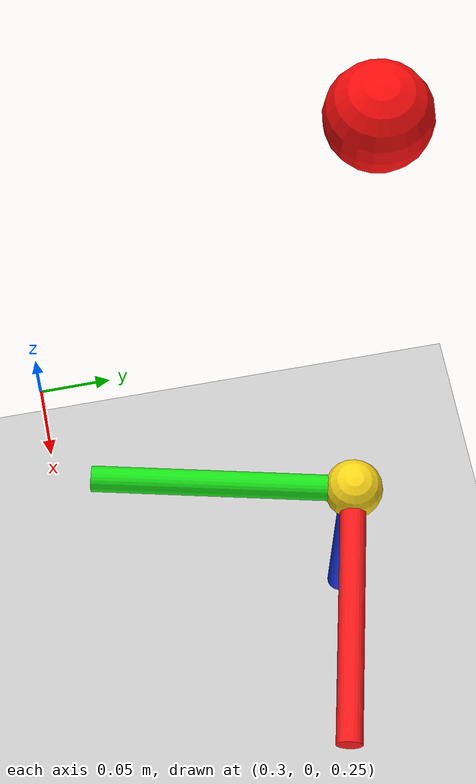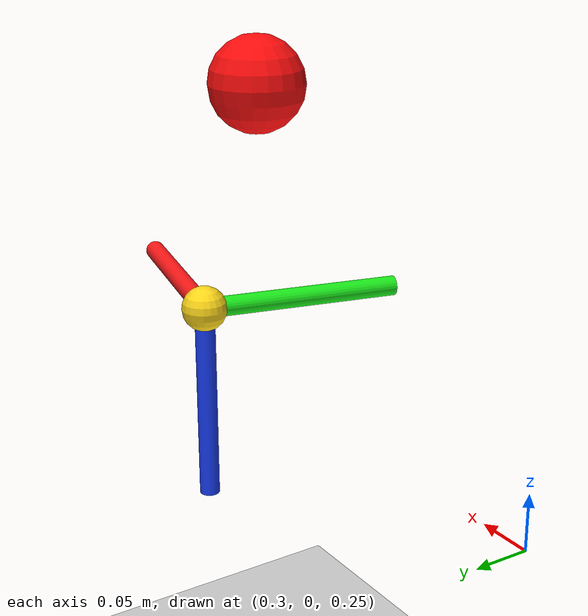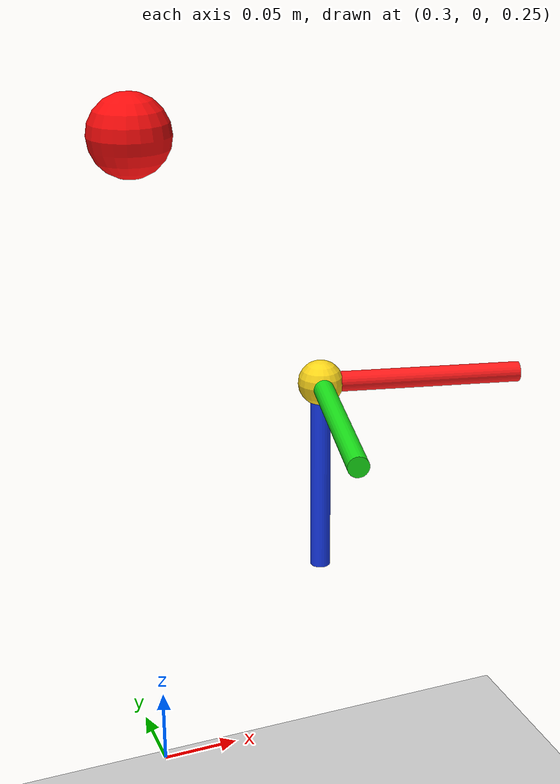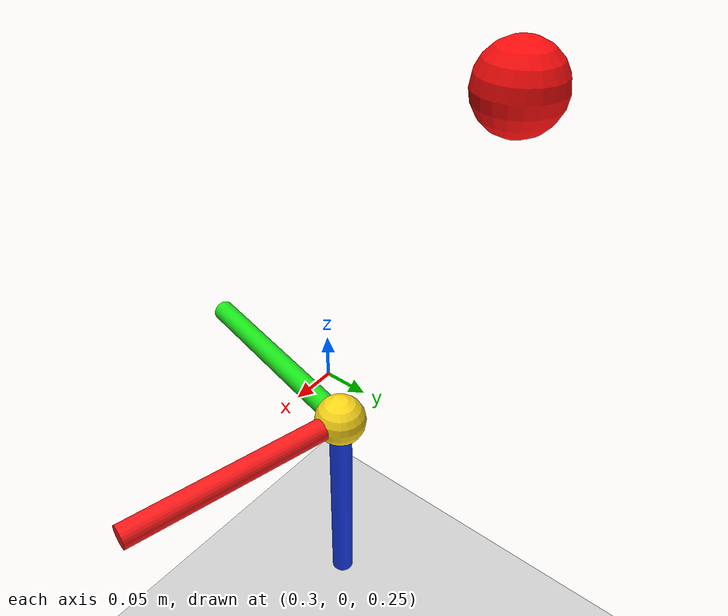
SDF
<?xml version="1.0"?>
<sdf version="1.6">
  <world name="robot_sim">
    <physics name="1ms" type="ignored">
      <max_step_size>0.001</max_step_size>
      <real_time_factor>1.0</real_time_factor>
    </physics>
    <plugin
      filename="ignition-gazebo-physics-system"
      name="gz::sim::systems::Physics">
    </plugin>
    <plugin
      filename="ignition-gazebo-user-commands-system"
      name="gz::sim::systems::UserCommands">
    </plugin>
    <plugin
      filename="ignition-gazebo-scene-broadcaster-system"
      name="gz::sim::systems::SceneBroadcaster">
    </plugin>
    <plugin
      filename="ignition-gazebo-contact-system"
      name="gz::sim::systems::Contact">
    </plugin>

    <light type="directional" name="sun">
      <cast_shadows>true</cast_shadows>
      <pose>0 0 10 0 0 0</pose>
      <diffuse>0.8 0.8 0.8 1</diffuse>
      <specular>0.2 0.2 0.2 1</specular>
      <direction>-0.5 0.1 -0.9</direction>
    </light>

    <!-- Starts on the home tool0 to target_pose line. sphere_motion_node teleports it. -->
    <model name="red_sphere">
      <static>true</static>
      <pose>0.35 0.21 0.63 0 0 0</pose>
      <link name="link">
        <collision name="collision">
          <geometry>
            <sphere>
              <radius>0.0315</radius>
            </sphere>
          </geometry>
        </collision>
        <visual name="visual">
          <geometry>
            <sphere>
              <radius>0.0315</radius>
            </sphere>
          </geometry>
          <material>
            <ambient>0.8 0.05 0.05 1</ambient>
            <diffuse>1.0 0.05 0.05 1</diffuse>
            <specular>0.3 0.1 0.1 1</specular>
          </material>
        </visual>
      </link>
    </model>

    <!-- tool0 target: straight line from the home pose passes through the red sphere. -->
    <model name="target_pose">
      <static>true</static>
      <pose>0.4863 0.1785 0.4313 -3.1416 0 -0.2271</pose>
      <link name="link">
        <visual name="origin">
          <geometry>
            <sphere>
              <radius>0.018</radius>
            </sphere>
          </geometry>
          <material>
            <ambient>0.9 0.75 0.1 1</ambient>
            <diffuse>1.0 0.85 0.1 1</diffuse>
            <specular>0.2 0.2 0.2 1</specular>
          </material>
        </visual>
        <visual name="axis_x">
          <pose>0.08 0 0 0 1.5708 0</pose>
          <geometry>
            <cylinder>
              <radius>0.008</radius>
              <length>0.16</length>
            </cylinder>
          </geometry>
          <material>
            <ambient>0.8 0.05 0.05 1</ambient>
            <diffuse>1.0 0.1 0.1 1</diffuse>
          </material>
        </visual>
        <visual name="axis_y">
          <pose>0 0.08 0 -1.5708 0 0</pose>
          <geometry>
            <cylinder>
              <radius>0.008</radius>
              <length>0.16</length>
            </cylinder>
          </geometry>
          <material>
            <ambient>0.05 0.6 0.05 1</ambient>
            <diffuse>0.1 0.9 0.1 1</diffuse>
          </material>
        </visual>
        <visual name="axis_z">
          <pose>0 0 0.08 0 0 0</pose>
          <geometry>
            <cylinder>
              <radius>0.008</radius>
              <length>0.16</length>
            </cylinder>
          </geometry>
          <material>
            <ambient>0.05 0.15 0.8 1</ambient>
            <diffuse>0.1 0.25 1.0 1</diffuse>
          </material>
        </visual>
      </link>
    </model>

    <model name="ground_plane">
      <static>true</static>
      <link name="link">
        <collision name="collision">
          <geometry>
            <plane>
              <normal>0 0 1</normal>
              <size>100 100</size>
            </plane>
          </geometry>
        </collision>
        <visual name="visual">
          <geometry>
            <plane>
              <normal>0 0 1</normal>
              <size>100 100</size>
            </plane>
          </geometry>
          <material>
            <ambient>0.8 0.8 0.8 1</ambient>
            <diffuse>0.8 0.8 0.8 1</diffuse>
            <specular>0.8 0.8 0.8 1</specular>
          </material>
        </visual>
      </link>
    </model>
  </world>
</sdf>
